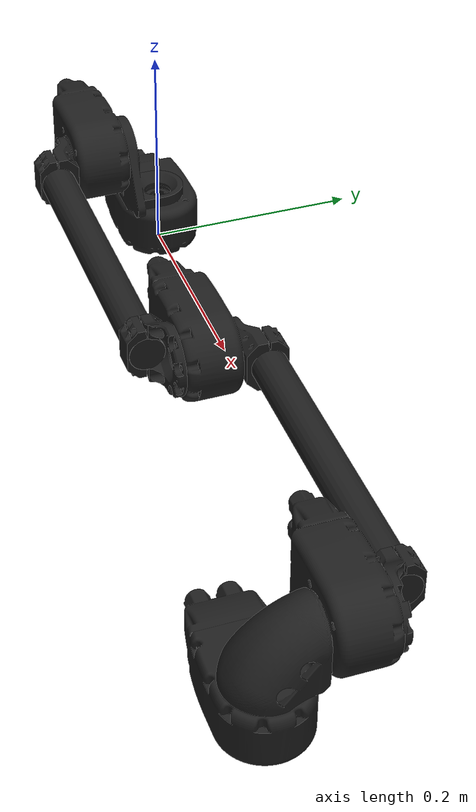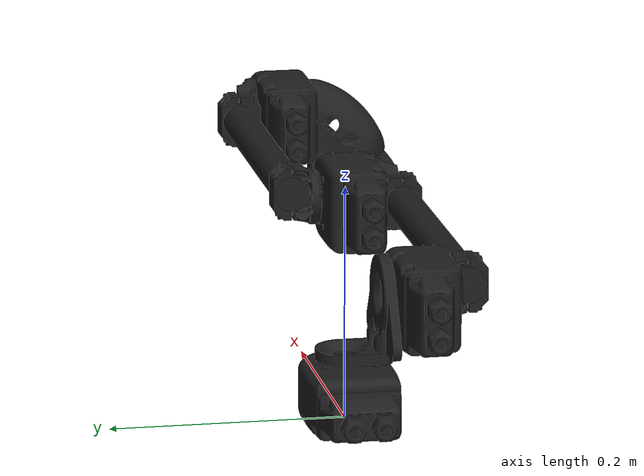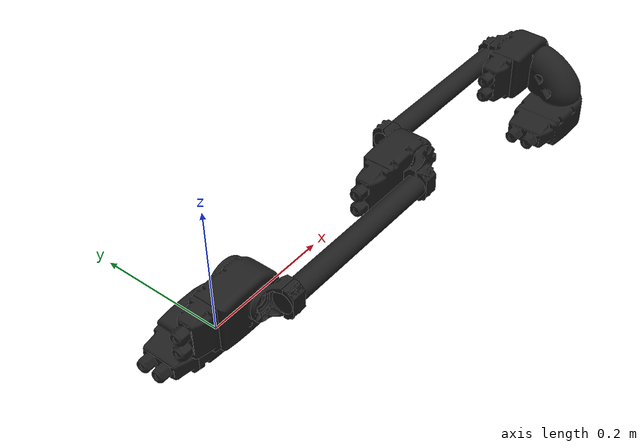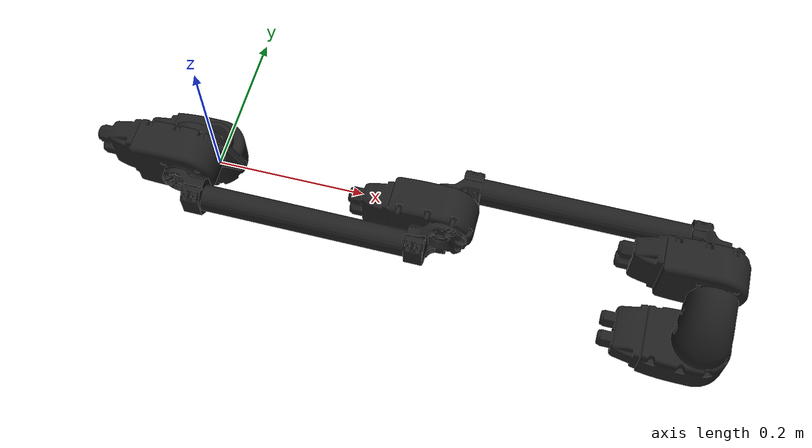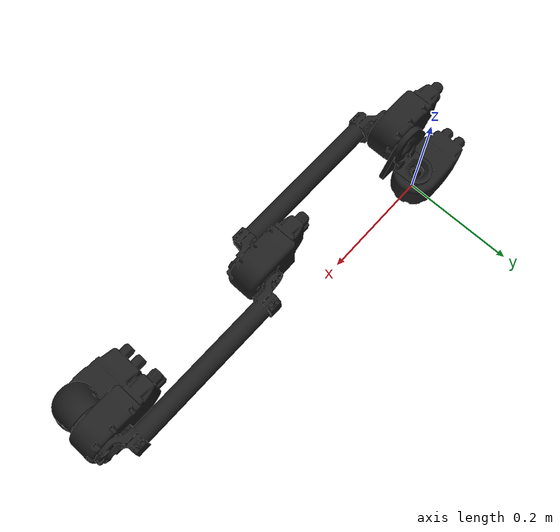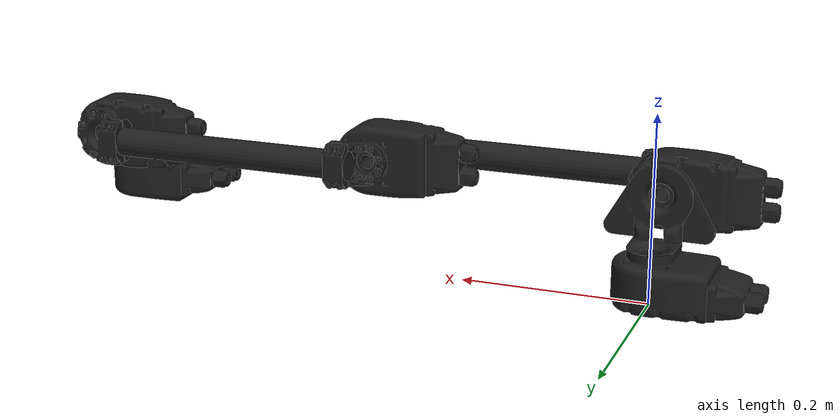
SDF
<sdf version='1.6'>
  <model name='A-2240-05'>
    <link name='Arm/J1_base/INPUT_INTERFACE'>
      <pose frame=''>0 0 0 0 -0 0</pose>
      <inertial>
        <pose frame=''>-0.02396 -0.00161 0.02557 0 -0 0</pose>
        <mass>0.685</mass>
        <inertia>
          <ixx>0.000488</ixx>
          <ixy>1.297e-05</ixy>
          <ixz>5.78e-05</ixz>
          <iyy>0.001009</iyy>
          <iyz>4.94e-06</iyz>
          <izz>0.001186</izz>
        </inertia>
      </inertial>
      <collision name='Arm/J1_base/INPUT_INTERFACE_collision'>
        <pose frame=''>0 0 0 0 -0 0</pose>
        <geometry>
          <mesh>
            <scale>0.001 0.001 0.001</scale>
            <uri>model://meshes/R8.stl</uri>
          </mesh>
        </geometry>
        <surface>
          <contact>
            <ode/>
          </contact>
          <friction>
            <ode/>
          </friction>
        </surface>
      </collision>
      <visual name='Arm/J1_base/INPUT_INTERFACE_visual'>
        <pose frame=''>0 0 0 0 -0 0</pose>
        <geometry>
          <mesh>
            <scale>0.001 0.001 0.001</scale>
            <uri>model://meshes/R8.stl</uri>
          </mesh>
        </geometry>
        <material>
          <script>
            <name>Gazebo/Black</name>
            <uri>file://media/materials/scripts/gazebo.material</uri>
          </script>
        </material>
      </visual>
      <gravity>1</gravity>
      <velocity_decay/>
    </link>
    <joint name='world_joint' type='fixed'>
      <child>Arm/J1_base/INPUT_INTERFACE</child>
      <parent>world</parent>
    </joint>
    <link name='shoulder_bracket/INPUT_INTERFACE'>
      <pose frame=''>0 0 0.051 0 -0 0</pose>
      <inertial>
        <pose frame=''>0 -0.01875 0.0275 0 -0 0</pose>
        <mass>0.215</mass>
        <inertia>
          <ixx>0.0003096</ixx>
          <ixy>0</ixy>
          <ixz>0</ixz>
          <iyy>0.0003096</iyy>
          <iyz>0</iyz>
          <izz>0.0003096</izz>
        </inertia>
      </inertial>
      <collision name='shoulder_bracket/INPUT_INTERFACE_collision'>
        <pose frame=''>0 0 0.005 1.5708 -0 1.5708</pose>
        <geometry>
          <mesh>
            <scale>0.001 0.001 0.001</scale>
            <uri>model://meshes/A-2221-01-Outside.stl</uri>
          </mesh>
        </geometry>
        <surface>
          <contact>
            <ode/>
          </contact>
          <friction>
            <ode/>
          </friction>
        </surface>
      </collision>
      <visual name='shoulder_bracket/INPUT_INTERFACE_visual'>
        <pose frame=''>0 0 0 0 -0 0</pose>
        <geometry>
          <mesh>
            <scale>0.001 0.001 0.001</scale>
            <uri>model://meshes/A-2221-01-Outside.stl</uri>
          </mesh>
        </geometry>
        <material>
          <script>
            <name>Gazebo/Black</name>
            <uri>file://media/materials/scripts/gazebo.material</uri>
          </script>
        </material>
      </visual>
      <gravity>1</gravity>
      <velocity_decay/>
    </link>
    <joint name='Arm/J1_base' type='revolute'>
      <child>shoulder_bracket/INPUT_INTERFACE</child>
      <parent>Arm/J1_base/INPUT_INTERFACE</parent>
      <axis>
        <xyz>0 0 1</xyz>
        <limit>
          <lower>-1e+16</lower>
          <upper>1e+16</upper>
        </limit>
        <dynamics>
          <damping>0.5</damping>
          <friction>0.5</friction>
          <spring_reference>0</spring_reference>
          <spring_stiffness>0</spring_stiffness>
        </dynamics>
        <use_parent_model_frame>1</use_parent_model_frame>
      </axis>
    </joint>
    <link name='Arm/J2_shoulder/INPUT_INTERFACE'>
      <pose frame=''>0 -0.0375 0.106 1.5708 -0 0</pose>
      <inertial>
        <pose frame=''>-0.02396 -0.00161 0.02557 0 -0 0</pose>
        <mass>0.715</mass>
        <inertia>
          <ixx>0.000488</ixx>
          <ixy>1.297e-05</ixy>
          <ixz>5.78e-05</ixz>
          <iyy>0.001009</iyy>
          <iyz>4.94e-06</iyz>
          <izz>0.001186</izz>
        </inertia>
      </inertial>
      <collision name='Arm/J2_shoulder/INPUT_INTERFACE_collision'>
        <pose frame=''>0 0 0 0 -0 0</pose>
        <geometry>
          <mesh>
            <scale>0.001 0.001 0.001</scale>
            <uri>model://meshes/R8.stl</uri>
          </mesh>
        </geometry>
        <surface>
          <contact>
            <ode/>
          </contact>
          <friction>
            <ode/>
          </friction>
        </surface>
      </collision>
      <visual name='Arm/J2_shoulder/INPUT_INTERFACE_visual'>
        <pose frame=''>0 0 0 0 -0 0</pose>
        <geometry>
          <mesh>
            <scale>0.001 0.001 0.001</scale>
            <uri>model://meshes/R8.stl</uri>
          </mesh>
        </geometry>
        <material>
          <script>
            <name>Gazebo/Black</name>
            <uri>file://media/materials/scripts/gazebo.material</uri>
          </script>
        </material>
      </visual>
      <gravity>1</gravity>
      <velocity_decay/>
    </link>
    <joint name='shoulder_bracket/OUTPUT_INTERFACE' type='fixed'>
      <child>Arm/J2_shoulder/INPUT_INTERFACE</child>
      <parent>shoulder_bracket/INPUT_INTERFACE</parent>
      <axis>
        <dynamics>
          <spring_reference>0</spring_reference>
          <spring_stiffness>0</spring_stiffness>
        </dynamics>
        <use_parent_model_frame>1</use_parent_model_frame>
        <xyz>0 0 1</xyz>
        <limit>
          <lower>-1e+16</lower>
          <upper>1e+16</upper>
        </limit>
      </axis>
      <physics>
        <ode>
          <limit>
            <cfm>0</cfm>
            <erp>0.2</erp>
          </limit>
        </ode>
      </physics>
    </joint>
    <link name='shoulder_elbow/INPUT_INTERFACE'>
      <pose frame=''>0 -0.0885 0.106 1.5708 -0 0</pose>
      <inertial>
        <pose frame=''>0.1625 0 0.02 0 -0 0</pose>
        <mass>0.402</mass>
        <inertia>
          <ixx>0</ixx>
          <ixy>0</ixy>
          <ixz>0</ixz>
          <iyy>0.00353844</iyy>
          <iyz>0</iyz>
          <izz>0.00353844</izz>
        </inertia>
      </inertial>
      <collision name='shoulder_elbow/INPUT_INTERFACE_collision'>
        <pose frame=''>0 0 0 0 -0 0</pose>
        <geometry>
          <mesh>
            <scale>1 1 1</scale>
            <uri>model://meshes/A-2038-02.stl</uri>
          </mesh>
        </geometry>
        <surface>
          <contact>
            <ode/>
          </contact>
          <friction>
            <ode/>
          </friction>
        </surface>
      </collision>
      <collision name='shoulder_elbow/INPUT_INTERFACE_collision_1'>
        <pose frame=''>0.1625 0 0.02 3.14159 1.57079 3.14159</pose>
        <geometry>
          <cylinder>
            <length>0.2996</length>
            <radius>0.016</radius>
          </cylinder>
        </geometry>
        <surface>
          <contact>
            <ode/>
          </contact>
          <friction>
            <ode/>
          </friction>
        </surface>
      </collision>
      <collision name='shoulder_elbow/INPUT_INTERFACE_collision_2'>
        <pose frame=''>0.325 -0 0 3.14159 -0 0</pose>
        <geometry>
          <mesh>
            <scale>1 1 1</scale>
            <uri>model://meshes/A-2039-02.stl</uri>
          </mesh>
        </geometry>
        <surface>
          <contact>
            <ode/>
          </contact>
          <friction>
            <ode/>
          </friction>
        </surface>
      </collision>
      <visual name='shoulder_elbow/INPUT_INTERFACE_visual'>
        <pose frame=''>0 0 0 0 -0 0</pose>
        <geometry>
          <mesh>
            <scale>1 1 1</scale>
            <uri>model://meshes/A-2038-02.stl</uri>
          </mesh>
        </geometry>
        <material>
          <script>
            <name>Gazebo/Black</name>
            <uri>file://media/materials/scripts/gazebo.material</uri>
          </script>
        </material>
      </visual>
      <visual name='shoulder_elbow/INPUT_INTERFACE_visual_1'>
        <pose frame=''>0.1625 0 0.02 3.14159 1.57079 3.14159</pose>
        <geometry>
          <cylinder>
            <length>0.2996</length>
            <radius>0.016</radius>
          </cylinder>
        </geometry>
        <material>
          <script>
            <name>Gazebo/Black</name>
            <uri>file://media/materials/scripts/gazebo.material</uri>
          </script>
        </material>
      </visual>
      <visual name='shoulder_elbow/INPUT_INTERFACE_visual_2'>
        <pose frame=''>0.325 -0 0 3.14159 -0 0</pose>
        <geometry>
          <mesh>
            <scale>1 1 1</scale>
            <uri>model://meshes/A-2039-02.stl</uri>
          </mesh>
        </geometry>
        <material>
          <script>
            <name>Gazebo/Black</name>
            <uri>file://media/materials/scripts/gazebo.material</uri>
          </script>
        </material>
      </visual>
      <gravity>1</gravity>
      <velocity_decay/>
    </link>
    <joint name='Arm/J2_shoulder' type='revolute'>
      <child>shoulder_elbow/INPUT_INTERFACE</child>
      <parent>Arm/J2_shoulder/INPUT_INTERFACE</parent>
      <axis>
        <xyz>0 -1 0</xyz>
        <limit>
          <lower>-1e+16</lower>
          <upper>1e+16</upper>
        </limit>
        <dynamics>
          <damping>0.5</damping>
          <friction>0.5</friction>
          <spring_reference>0</spring_reference>
          <spring_stiffness>0</spring_stiffness>
        </dynamics>
        <use_parent_model_frame>1</use_parent_model_frame>
      </axis>
    </joint>
    <link name='Arm/J3_elbow/INPUT_INTERFACE'>
      <pose frame=''>0.325 -0.0885 0.106 -1.5708 -0 0</pose>
      <inertial>
        <pose frame=''>-0.02396 -0.00161 0.02557 0 -0 0</pose>
        <mass>0.685</mass>
        <inertia>
          <ixx>0.000488</ixx>
          <ixy>1.297e-05</ixy>
          <ixz>5.78e-05</ixz>
          <iyy>0.001009</iyy>
          <iyz>4.94e-06</iyz>
          <izz>0.001186</izz>
        </inertia>
      </inertial>
      <collision name='Arm/J3_elbow/INPUT_INTERFACE_collision'>
        <pose frame=''>0 0 0 0 -0 0</pose>
        <geometry>
          <mesh>
            <scale>0.001 0.001 0.001</scale>
            <uri>model://meshes/R8.stl</uri>
          </mesh>
        </geometry>
        <surface>
          <contact>
            <ode/>
          </contact>
          <friction>
            <ode/>
          </friction>
        </surface>
      </collision>
      <visual name='Arm/J3_elbow/INPUT_INTERFACE_visual'>
        <pose frame=''>0 0 0 0 -0 0</pose>
        <geometry>
          <mesh>
            <scale>0.001 0.001 0.001</scale>
            <uri>model://meshes/R8.stl</uri>
          </mesh>
        </geometry>
        <material>
          <script>
            <name>Gazebo/Black</name>
            <uri>file://media/materials/scripts/gazebo.material</uri>
          </script>
        </material>
      </visual>
      <gravity>1</gravity>
      <velocity_decay/>
    </link>
    <joint name='shoulder_elbow/OUTPUT_JOINT' type='fixed'>
      <child>Arm/J3_elbow/INPUT_INTERFACE</child>
      <parent>shoulder_elbow/INPUT_INTERFACE</parent>
      <axis>
        <dynamics>
          <spring_reference>0</spring_reference>
          <spring_stiffness>0</spring_stiffness>
        </dynamics>
        <use_parent_model_frame>1</use_parent_model_frame>
        <xyz>0 0 1</xyz>
        <limit>
          <lower>-1e+16</lower>
          <upper>1e+16</upper>
        </limit>
      </axis>
      <physics>
        <ode>
          <limit>
            <cfm>0</cfm>
            <erp>0.2</erp>
          </limit>
        </ode>
      </physics>
    </joint>
    <link name='elbow_wrist1/INPUT_INTERFACE'>
      <pose frame=''>0.325 -0.0375 0.106 -1.5708 -0 0</pose>
      <inertial>
        <pose frame=''>0.1625 0 0.02 0 -0 0</pose>
        <mass>0.402</mass>
        <inertia>
          <ixx>0</ixx>
          <ixy>0</ixy>
          <ixz>0</ixz>
          <iyy>0.00353844</iyy>
          <iyz>0</iyz>
          <izz>0.00353844</izz>
        </inertia>
      </inertial>
      <collision name='elbow_wrist1/INPUT_INTERFACE_collision'>
        <pose frame=''>0 0 0 0 -0 0</pose>
        <geometry>
          <mesh>
            <scale>1 1 1</scale>
            <uri>model://meshes/A-2038-02.stl</uri>
          </mesh>
        </geometry>
        <surface>
          <contact>
            <ode/>
          </contact>
          <friction>
            <ode/>
          </friction>
        </surface>
      </collision>
      <collision name='elbow_wrist1/INPUT_INTERFACE_collision_1'>
        <pose frame=''>0.1625 0 0.02 3.14159 1.57079 3.14159</pose>
        <geometry>
          <cylinder>
            <length>0.2996</length>
            <radius>0.016</radius>
          </cylinder>
        </geometry>
        <surface>
          <contact>
            <ode/>
          </contact>
          <friction>
            <ode/>
          </friction>
        </surface>
      </collision>
      <collision name='elbow_wrist1/INPUT_INTERFACE_collision_2'>
        <pose frame=''>0.325 -0 0 3.14159 -0 0</pose>
        <geometry>
          <mesh>
            <scale>1 1 1</scale>
            <uri>model://meshes/A-2039-02.stl</uri>
          </mesh>
        </geometry>
        <surface>
          <contact>
            <ode/>
          </contact>
          <friction>
            <ode/>
          </friction>
        </surface>
      </collision>
      <visual name='elbow_wrist1/INPUT_INTERFACE_visual'>
        <pose frame=''>0 0 0 0 -0 0</pose>
        <geometry>
          <mesh>
            <scale>1 1 1</scale>
            <uri>model://meshes/A-2038-02.stl</uri>
          </mesh>
        </geometry>
        <material>
          <script>
            <name>Gazebo/Black</name>
            <uri>file://media/materials/scripts/gazebo.material</uri>
          </script>
        </material>
      </visual>
      <visual name='elbow_wrist1/INPUT_INTERFACE_visual_1'>
        <pose frame=''>0.1625 0 0.02 3.14159 1.57079 3.14159</pose>
        <geometry>
          <cylinder>
            <length>0.2996</length>
            <radius>0.016</radius>
          </cylinder>
        </geometry>
        <material>
          <script>
            <name>Gazebo/Black</name>
            <uri>file://media/materials/scripts/gazebo.material</uri>
          </script>
        </material>
      </visual>
      <visual name='elbow_wrist1/INPUT_INTERFACE_visual_2'>
        <pose frame=''>0.325 -0 0 3.14159 -0 0</pose>
        <geometry>
          <mesh>
            <scale>1 1 1</scale>
            <uri>model://meshes/A-2039-02.stl</uri>
          </mesh>
        </geometry>
        <material>
          <script>
            <name>Gazebo/Black</name>
            <uri>file://media/materials/scripts/gazebo.material</uri>
          </script>
        </material>
      </visual>
      <gravity>1</gravity>
      <velocity_decay/>
    </link>
    <joint name='Arm/J3_elbow' type='revolute'>
      <child>elbow_wrist1/INPUT_INTERFACE</child>
      <parent>Arm/J3_elbow/INPUT_INTERFACE</parent>
      <axis>
        <xyz>0 1 -0</xyz>
        <limit>
          <lower>-1e+16</lower>
          <upper>1e+16</upper>
        </limit>
        <dynamics>
          <damping>0.5</damping>
          <friction>0.5</friction>
          <spring_reference>0</spring_reference>
          <spring_stiffness>0</spring_stiffness>
        </dynamics>
        <use_parent_model_frame>1</use_parent_model_frame>
      </axis>
    </joint>
    <link name='Arm/J4_wrist1/INPUT_INTERFACE'>
      <pose frame=''>0.65 -0.0375 0.106 1.5708 -0 0</pose>
      <inertial>
        <pose frame=''>-0.02396 -0.00161 0.02557 0 -0 0</pose>
        <mass>0.67</mass>
        <inertia>
          <ixx>0.000488</ixx>
          <ixy>1.297e-05</ixy>
          <ixz>5.78e-05</ixz>
          <iyy>0.001009</iyy>
          <iyz>4.94e-06</iyz>
          <izz>0.001186</izz>
        </inertia>
      </inertial>
      <collision name='Arm/J4_wrist1/INPUT_INTERFACE_collision'>
        <pose frame=''>0 0 0 0 -0 0</pose>
        <geometry>
          <mesh>
            <scale>0.001 0.001 0.001</scale>
            <uri>model://meshes/R8.stl</uri>
          </mesh>
        </geometry>
        <surface>
          <contact>
            <ode/>
          </contact>
          <friction>
            <ode/>
          </friction>
        </surface>
      </collision>
      <visual name='Arm/J4_wrist1/INPUT_INTERFACE_visual'>
        <pose frame=''>0 0 0 0 -0 0</pose>
        <geometry>
          <mesh>
            <scale>0.001 0.001 0.001</scale>
            <uri>model://meshes/R8.stl</uri>
          </mesh>
        </geometry>
        <material>
          <script>
            <name>Gazebo/Black</name>
            <uri>file://media/materials/scripts/gazebo.material</uri>
          </script>
        </material>
      </visual>
      <gravity>1</gravity>
      <velocity_decay/>
    </link>
    <joint name='elbow_wrist1/OUTPUT_JOINT' type='fixed'>
      <child>Arm/J4_wrist1/INPUT_INTERFACE</child>
      <parent>elbow_wrist1/INPUT_INTERFACE</parent>
      <axis>
        <dynamics>
          <spring_reference>0</spring_reference>
          <spring_stiffness>0</spring_stiffness>
        </dynamics>
        <use_parent_model_frame>1</use_parent_model_frame>
        <xyz>0 0 1</xyz>
        <limit>
          <lower>-1e+16</lower>
          <upper>1e+16</upper>
        </limit>
      </axis>
      <physics>
        <ode>
          <limit>
            <cfm>0</cfm>
            <erp>0.2</erp>
          </limit>
        </ode>
      </physics>
    </joint>
    <link name='wrist2_bracket/INPUT_INTERFACE'>
      <pose frame=''>0.65 -0.0885 0.106 1.5708 -0 0</pose>
      <inertial>
        <pose frame=''>0 -0.0215 0.02 0 -0 0</pose>
        <mass>0.1</mass>
        <inertia>
          <ixx>0.000144</ixx>
          <ixy>0</ixy>
          <ixz>0</ixz>
          <iyy>0.000144</iyy>
          <iyz>0</iyz>
          <izz>0.000144</izz>
        </inertia>
      </inertial>
      <collision name='wrist2_bracket/INPUT_INTERFACE_collision'>
        <pose frame=''>0 0 0 1.5708 0 -1.5708</pose>
        <geometry>
          <mesh>
            <scale>0.001 0.001 0.001</scale>
            <uri>model://meshes/A-2220-01.stl</uri>
          </mesh>
        </geometry>
        <surface>
          <contact>
            <ode/>
          </contact>
          <friction>
            <ode/>
          </friction>
        </surface>
      </collision>
      <visual name='wrist2_bracket/INPUT_INTERFACE_visual'>
        <pose frame=''>0 0 0 0 -0 0</pose>
        <geometry>
          <mesh>
            <scale>0.001 0.001 0.001</scale>
            <uri>model://meshes/A-2220-01.stl</uri>
          </mesh>
        </geometry>
        <material>
          <script>
            <name>Gazebo/Black</name>
            <uri>file://media/materials/scripts/gazebo.material</uri>
          </script>
        </material>
      </visual>
      <gravity>1</gravity>
      <velocity_decay/>
    </link>
    <joint name='Arm/J4_wrist1' type='revolute'>
      <child>wrist2_bracket/INPUT_INTERFACE</child>
      <parent>Arm/J4_wrist1/INPUT_INTERFACE</parent>
      <axis>
        <xyz>-0 -1 0</xyz>
        <limit>
          <lower>-1e+16</lower>
          <upper>1e+16</upper>
        </limit>
        <dynamics>
          <damping>0.5</damping>
          <friction>0.5</friction>
          <spring_reference>0</spring_reference>
          <spring_stiffness>0</spring_stiffness>
        </dynamics>
        <use_parent_model_frame>1</use_parent_model_frame>
      </axis>
    </joint>
    <link name='Arm/J5_wrist2/INPUT_INTERFACE'>
      <pose frame=''>0.65 -0.1285 0.063 3.14159 -0 0</pose>
      <inertial>
        <pose frame=''>-0.02396 -0.00161 0.02557 0 -0 0</pose>
        <mass>0.67</mass>
        <inertia>
          <ixx>0.000488</ixx>
          <ixy>1.297e-05</ixy>
          <ixz>5.78e-05</ixz>
          <iyy>0.001009</iyy>
          <iyz>4.94e-06</iyz>
          <izz>0.001186</izz>
        </inertia>
      </inertial>
      <collision name='Arm/J5_wrist2/INPUT_INTERFACE_collision'>
        <pose frame=''>0 0 0 0 -0 0</pose>
        <geometry>
          <mesh>
            <scale>0.001 0.001 0.001</scale>
            <uri>model://meshes/R8.stl</uri>
          </mesh>
        </geometry>
        <surface>
          <contact>
            <ode/>
          </contact>
          <friction>
            <ode/>
          </friction>
        </surface>
      </collision>
      <visual name='Arm/J5_wrist2/INPUT_INTERFACE_visual'>
        <pose frame=''>0 0 0 0 -0 0</pose>
        <geometry>
          <mesh>
            <scale>0.001 0.001 0.001</scale>
            <uri>model://meshes/R8.stl</uri>
          </mesh>
        </geometry>
        <material>
          <script>
            <name>Gazebo/Black</name>
            <uri>file://media/materials/scripts/gazebo.material</uri>
          </script>
        </material>
      </visual>
      <gravity>1</gravity>
      <velocity_decay/>
    </link>
    <joint name='wrist2_bracket/OUTPUT_INTERFACE' type='fixed'>
      <child>Arm/J5_wrist2/INPUT_INTERFACE</child>
      <parent>wrist2_bracket/INPUT_INTERFACE</parent>
      <axis>
        <dynamics>
          <spring_reference>0</spring_reference>
          <spring_stiffness>0</spring_stiffness>
        </dynamics>
        <use_parent_model_frame>1</use_parent_model_frame>
        <xyz>0 0 1</xyz>
        <limit>
          <lower>-1e+16</lower>
          <upper>1e+16</upper>
        </limit>
      </axis>
      <physics>
        <ode>
          <limit>
            <cfm>0</cfm>
            <erp>0.2</erp>
          </limit>
        </ode>
      </physics>
    </joint>
    <link name='HEBI_SIM/Arm/J5_wrist2/R8_3'>
      <pose frame=''>0.65 -0.1285 0.063 3.14159 -0 0</pose>
      <inertial>
        <pose frame=''>0 0 0 0 -0 0</pose>
        <mass>0.001</mass>
        <inertia>
          <ixx>1e-06</ixx>
          <ixy>0</ixy>
          <ixz>0</ixz>
          <iyy>1e-06</iyy>
          <iyz>0</iyz>
          <izz>1e-06</izz>
        </inertia>
      </inertial>
      <visual name='HEBI_SIM/Arm/J5_wrist2/R8_3_visual'>
        <pose frame=''>-0.03 0 0.02 0 -0 0</pose>
        <geometry>
          <sphere>
            <radius>0.001</radius>
          </sphere>
        </geometry>
      </visual>
    </link>
    <joint name='HEBI_SIM_JOINT/Arm/J5_wrist2' type='fixed'>
      <child>HEBI_SIM/Arm/J5_wrist2/R8_3</child>
      <parent>Arm/J5_wrist2/INPUT_INTERFACE</parent>
      <axis>
        <dynamics>
          <spring_reference>0</spring_reference>
          <spring_stiffness>0</spring_stiffness>
        </dynamics>
        <use_parent_model_frame>1</use_parent_model_frame>
        <xyz>0 0 1</xyz>
        <limit>
          <lower>-1e+16</lower>
          <upper>1e+16</upper>
        </limit>
      </axis>
      <physics>
        <ode>
          <limit>
            <cfm>0</cfm>
            <erp>0.2</erp>
          </limit>
        </ode>
      </physics>
    </joint>
    <link name='HEBI_SIM/Arm/J4_wrist1/R8_3'>
      <pose frame=''>0.65 -0.0375 0.106 1.5708 -0 0</pose>
      <inertial>
        <pose frame=''>0 0 0 0 -0 0</pose>
        <mass>0.001</mass>
        <inertia>
          <ixx>1e-06</ixx>
          <ixy>0</ixy>
          <ixz>0</ixz>
          <iyy>1e-06</iyy>
          <iyz>0</iyz>
          <izz>1e-06</izz>
        </inertia>
      </inertial>
      <visual name='HEBI_SIM/Arm/J4_wrist1/R8_3_visual'>
        <pose frame=''>-0.03 0 0.02 0 -0 0</pose>
        <geometry>
          <sphere>
            <radius>0.001</radius>
          </sphere>
        </geometry>
      </visual>
    </link>
    <joint name='HEBI_SIM_JOINT/Arm/J4_wrist1' type='fixed'>
      <child>HEBI_SIM/Arm/J4_wrist1/R8_3</child>
      <parent>Arm/J4_wrist1/INPUT_INTERFACE</parent>
      <axis>
        <dynamics>
          <spring_reference>0</spring_reference>
          <spring_stiffness>0</spring_stiffness>
        </dynamics>
        <use_parent_model_frame>1</use_parent_model_frame>
        <xyz>0 0 1</xyz>
        <limit>
          <lower>-1e+16</lower>
          <upper>1e+16</upper>
        </limit>
      </axis>
      <physics>
        <ode>
          <limit>
            <cfm>0</cfm>
            <erp>0.2</erp>
          </limit>
        </ode>
      </physics>
    </joint>
    <link name='HEBI_SIM/Arm/J3_elbow/R8_9'>
      <pose frame=''>0.325 -0.0885 0.106 -1.5708 -0 0</pose>
      <inertial>
        <pose frame=''>0 0 0 0 -0 0</pose>
        <mass>0.001</mass>
        <inertia>
          <ixx>1e-06</ixx>
          <ixy>0</ixy>
          <ixz>0</ixz>
          <iyy>1e-06</iyy>
          <iyz>0</iyz>
          <izz>1e-06</izz>
        </inertia>
      </inertial>
      <visual name='HEBI_SIM/Arm/J3_elbow/R8_9_visual'>
        <pose frame=''>-0.03 0 0.02 0 -0 0</pose>
        <geometry>
          <sphere>
            <radius>0.001</radius>
          </sphere>
        </geometry>
      </visual>
    </link>
    <joint name='HEBI_SIM_JOINT/Arm/J3_elbow' type='fixed'>
      <child>HEBI_SIM/Arm/J3_elbow/R8_9</child>
      <parent>Arm/J3_elbow/INPUT_INTERFACE</parent>
      <axis>
        <dynamics>
          <spring_reference>0</spring_reference>
          <spring_stiffness>0</spring_stiffness>
        </dynamics>
        <use_parent_model_frame>1</use_parent_model_frame>
        <xyz>0 0 1</xyz>
        <limit>
          <lower>-1e+16</lower>
          <upper>1e+16</upper>
        </limit>
      </axis>
      <physics>
        <ode>
          <limit>
            <cfm>0</cfm>
            <erp>0.2</erp>
          </limit>
        </ode>
      </physics>
    </joint>
    <link name='HEBI_SIM/Arm/J2_shoulder/R8_16'>
      <pose frame=''>0 -0.0375 0.106 1.5708 -0 0</pose>
      <inertial>
        <pose frame=''>0 0 0 0 -0 0</pose>
        <mass>0.001</mass>
        <inertia>
          <ixx>1e-06</ixx>
          <ixy>0</ixy>
          <ixz>0</ixz>
          <iyy>1e-06</iyy>
          <iyz>0</iyz>
          <izz>1e-06</izz>
        </inertia>
      </inertial>
      <visual name='HEBI_SIM/Arm/J2_shoulder/R8_16_visual'>
        <pose frame=''>-0.03 0 0.02 0 -0 0</pose>
        <geometry>
          <sphere>
            <radius>0.001</radius>
          </sphere>
        </geometry>
      </visual>
    </link>
    <joint name='HEBI_SIM_JOINT/Arm/J2_shoulder' type='fixed'>
      <child>HEBI_SIM/Arm/J2_shoulder/R8_16</child>
      <parent>Arm/J2_shoulder/INPUT_INTERFACE</parent>
      <axis>
        <dynamics>
          <spring_reference>0</spring_reference>
          <spring_stiffness>0</spring_stiffness>
        </dynamics>
        <use_parent_model_frame>1</use_parent_model_frame>
        <xyz>0 0 1</xyz>
        <limit>
          <lower>-1e+16</lower>
          <upper>1e+16</upper>
        </limit>
      </axis>
      <physics>
        <ode>
          <limit>
            <cfm>0</cfm>
            <erp>0.2</erp>
          </limit>
        </ode>
      </physics>
    </joint>
    <link name='HEBI_SIM/Arm/J1_base/R8_9'>
      <pose frame=''>0 0 0 0 -0 0</pose>
      <inertial>
        <pose frame=''>0 0 0 0 -0 0</pose>
        <mass>0.001</mass>
        <inertia>
          <ixx>1e-06</ixx>
          <ixy>0</ixy>
          <ixz>0</ixz>
          <iyy>1e-06</iyy>
          <iyz>0</iyz>
          <izz>1e-06</izz>
        </inertia>
      </inertial>
      <visual name='HEBI_SIM/Arm/J1_base/R8_9_visual'>
        <pose frame=''>-0.03 0 0.02 0 -0 0</pose>
        <geometry>
          <sphere>
            <radius>0.001</radius>
          </sphere>
        </geometry>
      </visual>
    </link>
    <joint name='HEBI_SIM_JOINT/Arm/J1_base' type='fixed'>
      <child>HEBI_SIM/Arm/J1_base/R8_9</child>
      <parent>Arm/J1_base/INPUT_INTERFACE</parent>
      <axis>
        <dynamics>
          <spring_reference>0</spring_reference>
          <spring_stiffness>0</spring_stiffness>
        </dynamics>
        <use_parent_model_frame>1</use_parent_model_frame>
        <xyz>0 0 1</xyz>
        <limit>
          <lower>-1e+16</lower>
          <upper>1e+16</upper>
        </limit>
      </axis>
      <physics>
        <ode>
          <limit>
            <cfm>0</cfm>
            <erp>0.2</erp>
          </limit>
        </ode>
      </physics>
    </joint>
    <static>0</static>
    <plugin name='hebi_gazebo_plugin' filename='libhebi_gazebo_plugin.so'/>
  </model>
</sdf>
